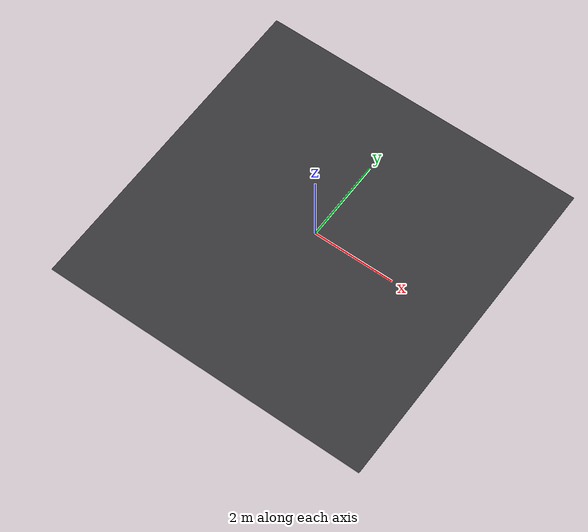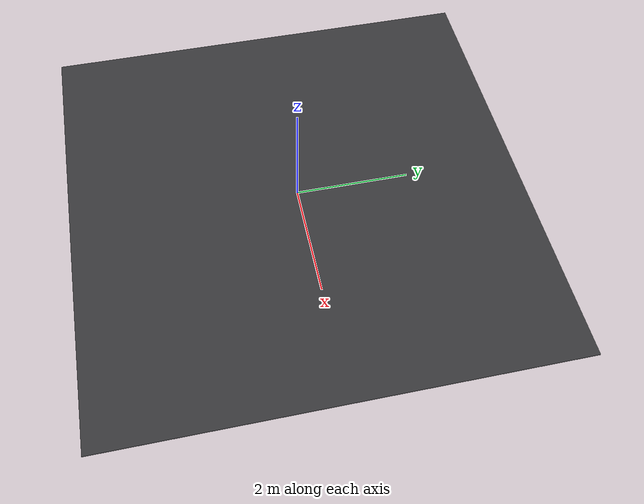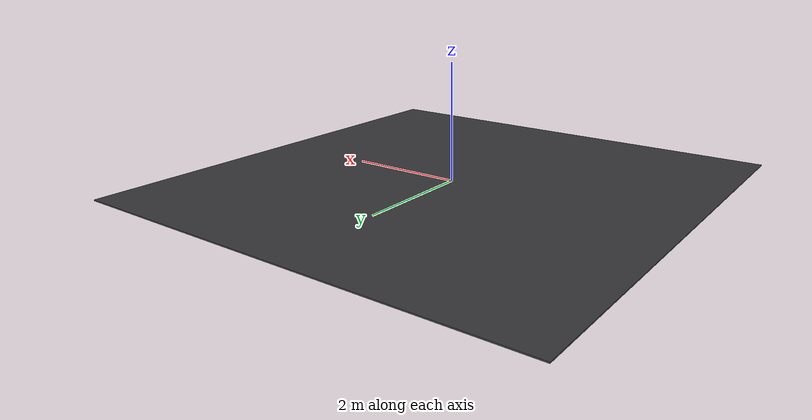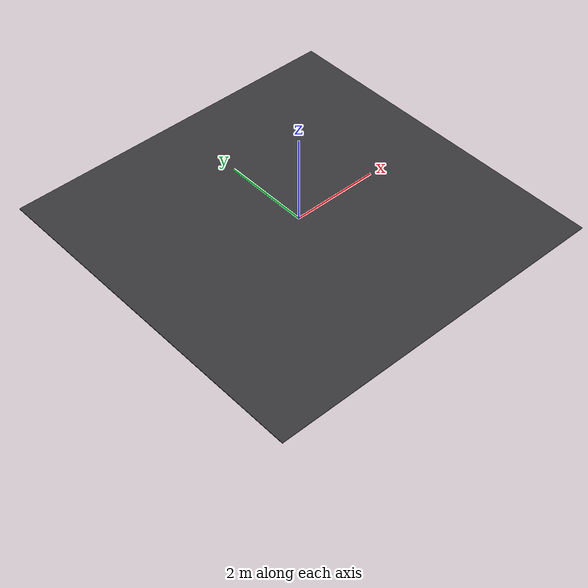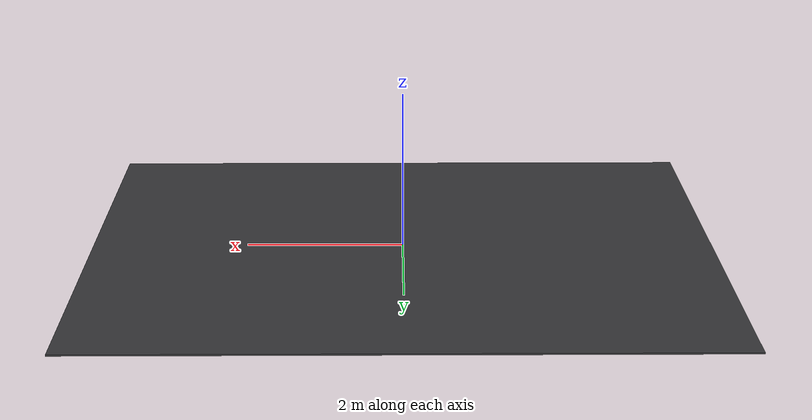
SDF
<?xml version="1.0"?>
<sdf version="1.10">
  <world name="shuttle_physics_test">

    <physics name="1ms" type="ignored">
      <max_step_size>0.001</max_step_size>
      <real_time_factor>1.0</real_time_factor>
    </physics>

    <plugin filename="gz-sim-physics-system"
            name="gz::sim::systems::Physics"/>
    <plugin filename="gz-sim-user-commands-system"
            name="gz::sim::systems::UserCommands"/>
    <plugin filename="gz-sim-scene-broadcaster-system"
            name="gz::sim::systems::SceneBroadcaster"/>
    <plugin filename="gz-sim-apply-link-wrench-system"
            name="gz::sim::systems::ApplyLinkWrench"/>

    <scene>
      <ambient>0.35 0.35 0.35 1</ambient>
      <background>0.08 0.08 0.09 1</background>
      <shadows>true</shadows>
    </scene>

    <light type="directional" name="test_light">
      <pose>0 0 6 0 0 0</pose>
      <diffuse>0.9 0.9 0.9 1</diffuse>
      <specular>0.1 0.1 0.1 1</specular>
      <direction>-0.2 0.2 -1.0</direction>
      <cast_shadows>true</cast_shadows>
    </light>

    <model name="test_floor">
      <static>true</static>
      <link name="floor_link">
        <collision name="floor_collision">
          <geometry><box><size>8 8 0.02</size></box></geometry>
          <surface>
            <friction>
              <ode><mu>0.8</mu><mu2>0.8</mu2></ode>
            </friction>
            <bounce>
              <restitution_coefficient>0.0</restitution_coefficient>
              <threshold>1000000.0</threshold>
            </bounce>
          </surface>
        </collision>
        <visual name="floor_visual">
          <geometry><box><size>8 8 0.02</size></box></geometry>
          <material>
            <ambient>0.16 0.16 0.17 1</ambient>
            <diffuse>0.22 0.22 0.23 1</diffuse>
          </material>
        </visual>
      </link>
      <pose>0 0 -0.01 0 0 0</pose>
    </model>

  </world>
</sdf>
